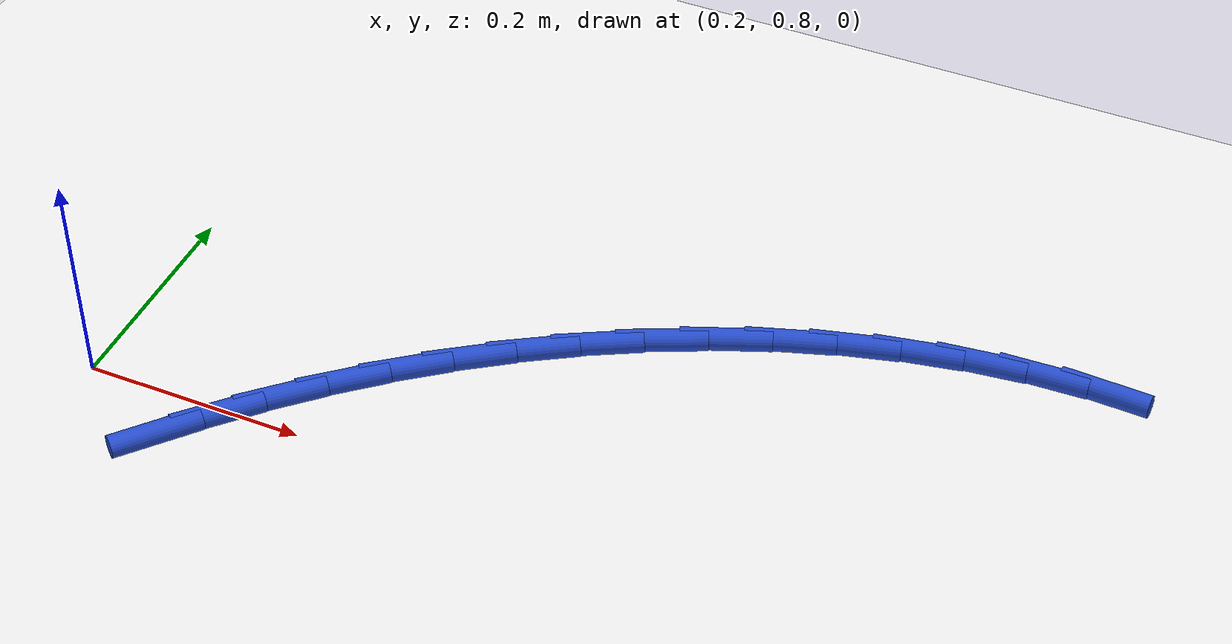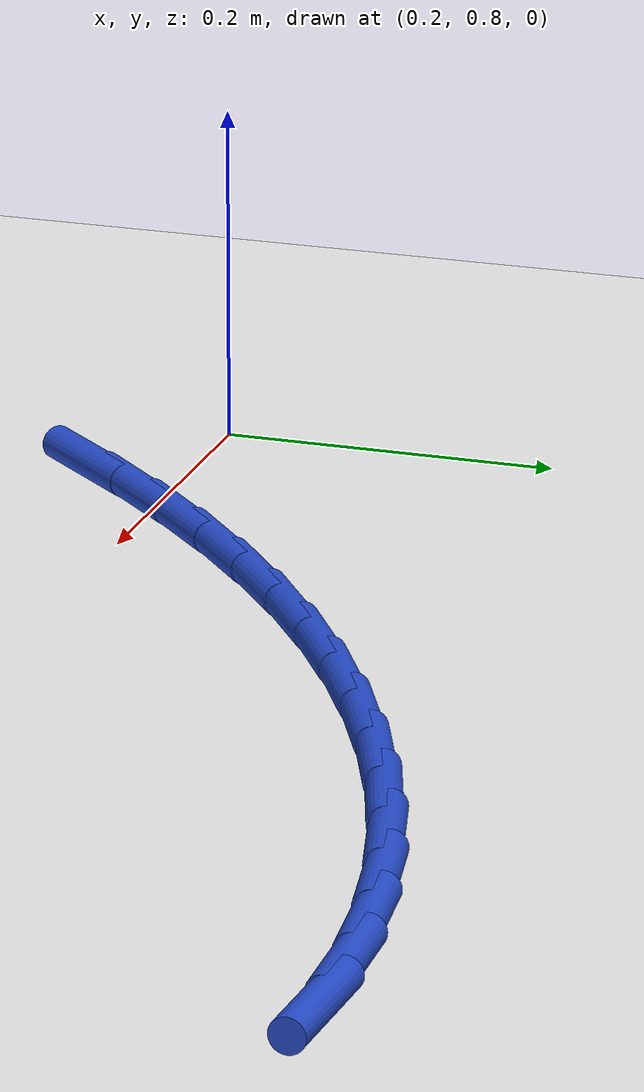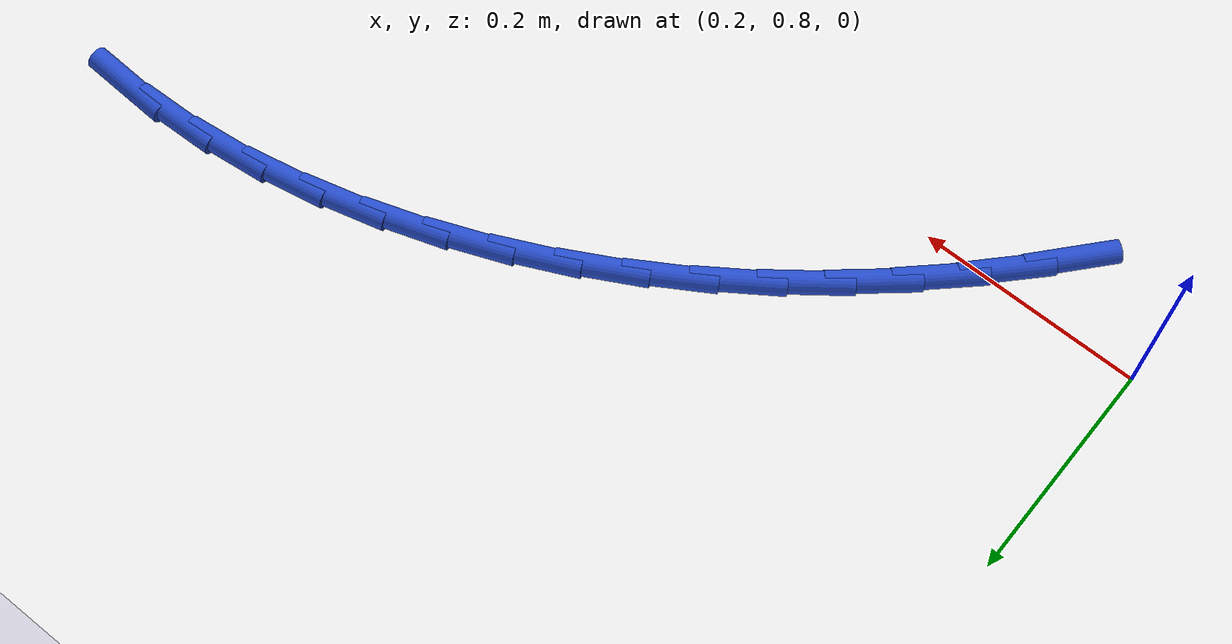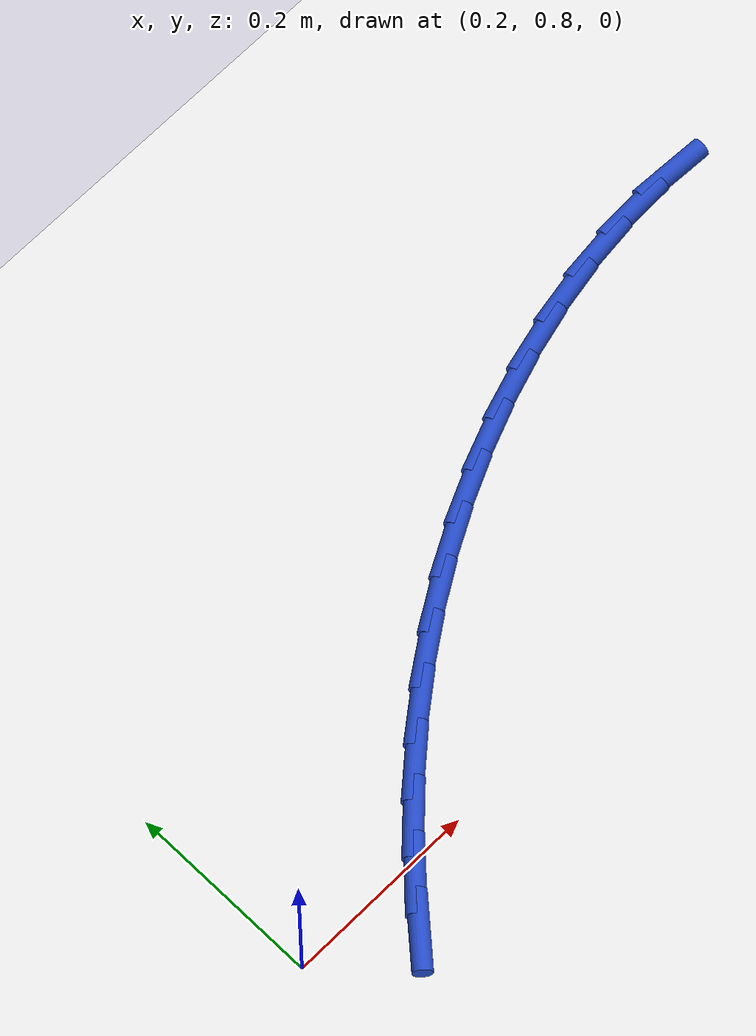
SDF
<sdf version="1.6">
 <world name="default">
  <model name="ground_plane">
   <static>1</static>
   <link name="link">
    <collision name="collision">
     <geometry><plane><normal>0 0 1</normal><size>100 100</size></plane></geometry>
     <surface><friction><ode><mu>100</mu><mu2>50</mu2></ode></friction></surface>
    </collision>
    <visual name="visual">
     <cast_shadows>0</cast_shadows>
     <geometry><plane><normal>0 0 1</normal><size>100 100</size></plane></geometry>
     <material>
      <script><uri>file://media/materials/scripts/gazebo.material</uri><name>Gazebo/WhiteGlow</name></script>
     </material>
    </visual>
   </link>
  </model>
  <model name="line">
   <link name="link_15">
    <pose>0.29633669063254886 0.7471845377884865 0.01 0 1.57 0.8516868092772087</pose>
    <collision name="collision">
     <geometry><cylinder><radius>0.01</radius><length>0.08</length></cylinder></geometry>
    </collision>
    <visual name="visual">
     <material>
      <script><name>Gazebo/Blue</name><uri>file://media/materials/scripts/gazebo.material</uri></script>
     </material>
     <geometry><cylinder><radius>0.01</radius><length>0.08</length></cylinder></geometry>
    </visual>
   </link>
   <link name="link_16">
    <pose>0.33222019443464296 0.7881711332094555 0.01 0 1.57 0.8049068254104277</pose>
    <collision name="collision">
     <geometry><cylinder><radius>0.01</radius><length>0.08</length></cylinder></geometry>
    </collision>
    <visual name="visual">
     <material>
      <script><name>Gazebo/Blue</name><uri>file://media/materials/scripts/gazebo.material</uri></script>
     </material>
     <geometry><cylinder><radius>0.01</radius><length>0.08</length></cylinder></geometry>
    </visual>
   </link>
   <link name="link_17">
    <pose>0.3699886490468825 0.8274427267801616 0.01 0 1.57 0.7565295982734507</pose>
    <collision name="collision">
     <geometry><cylinder><radius>0.01</radius><length>0.08</length></cylinder></geometry>
    </collision>
    <visual name="visual">
     <material>
      <script><name>Gazebo/Blue</name><uri>file://media/materials/scripts/gazebo.material</uri></script>
     </material>
     <geometry><cylinder><radius>0.01</radius><length>0.08</length></cylinder></geometry>
    </visual>
   </link>
   <link name="link_18">
    <pose>0.40965480461064896 0.8648823311266418 0.01 0 1.57 0.7065919765978586</pose>
    <collision name="collision">
     <geometry><cylinder><radius>0.01</radius><length>0.08</length></cylinder></geometry>
    </collision>
    <visual name="visual">
     <material>
      <script><name>Gazebo/Blue</name><uri>file://media/materials/scripts/gazebo.material</uri></script>
     </material>
     <geometry><cylinder><radius>0.01</radius><length>0.08</length></cylinder></geometry>
    </visual>
   </link>
   <link name="link_19">
    <pose>0.45123141126732363 0.9003729588749323 0.01 0 1.57 0.6551649756336253</pose>
    <collision name="collision">
     <geometry><cylinder><radius>0.01</radius><length>0.08</length></cylinder></geometry>
    </collision>
    <visual name="visual">
     <material>
      <script><name>Gazebo/Blue</name><uri>file://media/materials/scripts/gazebo.material</uri></script>
     </material>
     <geometry><cylinder><radius>0.01</radius><length>0.08</length></cylinder></geometry>
    </visual>
   </link>
   <link name="link_20">
    <pose>0.4947312191582881 0.9337976226510701 0.01 0 1.57 0.6023577948183628</pose>
    <collision name="collision">
     <geometry><cylinder><radius>0.01</radius><length>0.08</length></cylinder></geometry>
    </collision>
    <visual name="visual">
     <material>
      <script><name>Gazebo/Blue</name><uri>file://media/materials/scripts/gazebo.material</uri></script>
     </material>
     <geometry><cylinder><radius>0.01</radius><length>0.08</length></cylinder></geometry>
    </visual>
   </link>
   <link name="link_21">
    <pose>0.5401666215277722 0.965039175781196 0.01 0 1.57 0.5485067480671424</pose>
    <collision name="collision">
     <geometry><cylinder><radius>0.01</radius><length>0.08</length></cylinder></geometry>
    </collision>
    <visual name="visual">
     <material>
      <script><name>Gazebo/Blue</name><uri>file://media/materials/scripts/gazebo.material</uri></script>
     </material>
     <geometry><cylinder><radius>0.01</radius><length>0.08</length></cylinder></geometry>
    </visual>
   </link>
   <link name="link_22">
    <pose>0.5874744555228414 0.993946747370523 0.01 0 1.57 0.49379203879575945</pose>
    <collision name="collision">
     <geometry><cylinder><radius>0.01</radius><length>0.08</length></cylinder></geometry>
    </collision>
    <visual name="visual">
     <material>
      <script><name>Gazebo/Blue</name><uri>file://media/materials/scripts/gazebo.material</uri></script>
     </material>
     <geometry><cylinder><radius>0.01</radius><length>0.08</length></cylinder></geometry>
    </visual>
   </link>
   <link name="link_23">
    <pose>0.6364230347330464 1.0202942465764588 0.01 0 1.57 0.4376311170116242</pose>
    <collision name="collision">
     <geometry><cylinder><radius>0.01</radius><length>0.08</length></cylinder></geometry>
    </collision>
    <visual name="visual">
     <material>
      <script><name>Gazebo/Blue</name><uri>file://media/materials/scripts/gazebo.material</uri></script>
     </material>
     <geometry><cylinder><radius>0.01</radius><length>0.08</length></cylinder></geometry>
    </visual>
   </link>
   <link name="link_24">
    <pose>0.6867578784745036 1.0438454084057858 0.01 0 1.57 0.3793653192335727</pose>
    <collision name="collision">
     <geometry><cylinder><radius>0.01</radius><length>0.08</length></cylinder></geometry>
    </collision>
    <visual name="visual">
     <material>
      <script><name>Gazebo/Blue</name><uri>file://media/materials/scripts/gazebo.material</uri></script>
     </material>
     <geometry><cylinder><radius>0.01</radius><length>0.08</length></cylinder></geometry>
    </visual>
   </link>
   <link name="link_25">
    <pose>0.7382245060633289 1.0643639678652856 0.01 0 1.57 0.31833738543500945</pose>
    <collision name="collision">
     <geometry><cylinder><radius>0.01</radius><length>0.08</length></cylinder></geometry>
    </collision>
    <visual name="visual">
     <material>
      <script><name>Gazebo/Blue</name><uri>file://media/materials/scripts/gazebo.material</uri></script>
     </material>
     <geometry><cylinder><radius>0.01</radius><length>0.08</length></cylinder></geometry>
    </visual>
   </link>
   <link name="link_26">
    <pose>0.7905684368156387 1.0816136599617399 0.01 0 1.57 0.25389412969674074</pose>
    <collision name="collision">
     <geometry><cylinder><radius>0.01</radius><length>0.08</length></cylinder></geometry>
    </collision>
    <visual name="visual">
     <material>
      <script><name>Gazebo/Blue</name><uri>file://media/materials/scripts/gazebo.material</uri></script>
     </material>
     <geometry><cylinder><radius>0.01</radius><length>0.08</length></cylinder></geometry>
    </visual>
   </link>
   <link name="link_27">
    <pose>0.8435351900475493 1.0953582197019323 0.01 0 1.57 0.18539924573448563</pose>
    <collision name="collision">
     <geometry><cylinder><radius>0.01</radius><length>0.08</length></cylinder></geometry>
    </collision>
    <visual name="visual">
     <material>
      <script><name>Gazebo/Blue</name><uri>file://media/materials/scripts/gazebo.material</uri></script>
     </material>
     <geometry><cylinder><radius>0.01</radius><length>0.08</length></cylinder></geometry>
    </visual>
   </link>
   <link name="link_28">
    <pose>0.8968702850751769 1.1053613820926438 0.01 0 1.57 0.11225976262767544</pose>
    <collision name="collision">
     <geometry><cylinder><radius>0.01</radius><length>0.08</length></cylinder></geometry>
    </collision>
    <visual name="visual">
     <material>
      <script><name>Gazebo/Blue</name><uri>file://media/materials/scripts/gazebo.material</uri></script>
     </material>
     <geometry><cylinder><radius>0.01</radius><length>0.08</length></cylinder></geometry>
    </visual>
   </link>
   <link name="link_29">
    <pose>0.9503192412146377 1.1113868821406574 0.01 0 1.57 0.03396992080539094</pose>
    <collision name="collision">
     <geometry><cylinder><radius>0.01</radius><length>0.08</length></cylinder></geometry>
    </collision>
    <visual name="visual">
     <material>
      <script><name>Gazebo/Blue</name><uri>file://media/materials/scripts/gazebo.material</uri></script>
     </material>
     <geometry><cylinder><radius>0.01</radius><length>0.08</length></cylinder></geometry>
    </visual>
   </link>
   <link name="link_30">
    <pose>1.0036275797143186 1.1131984590577657 0.01 0 1.57 -0.047758278504424954</pose>
    <collision name="collision">
     <geometry><cylinder><radius>0.01</radius><length>0.08</length></cylinder></geometry>
    </collision>
    <visual name="visual">
     <material>
      <script><name>Gazebo/Blue</name><uri>file://media/materials/scripts/gazebo.material</uri></script>
     </material>
     <geometry><cylinder><radius>0.01</radius><length>0.08</length></cylinder></geometry>
    </visual>
   </link>
  </model>
 </world>
</sdf>
